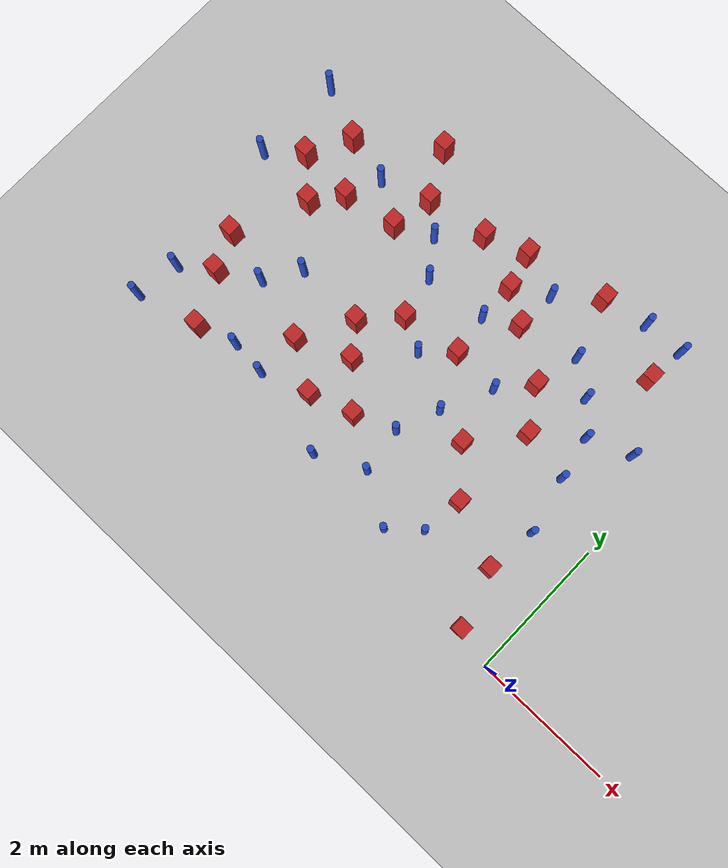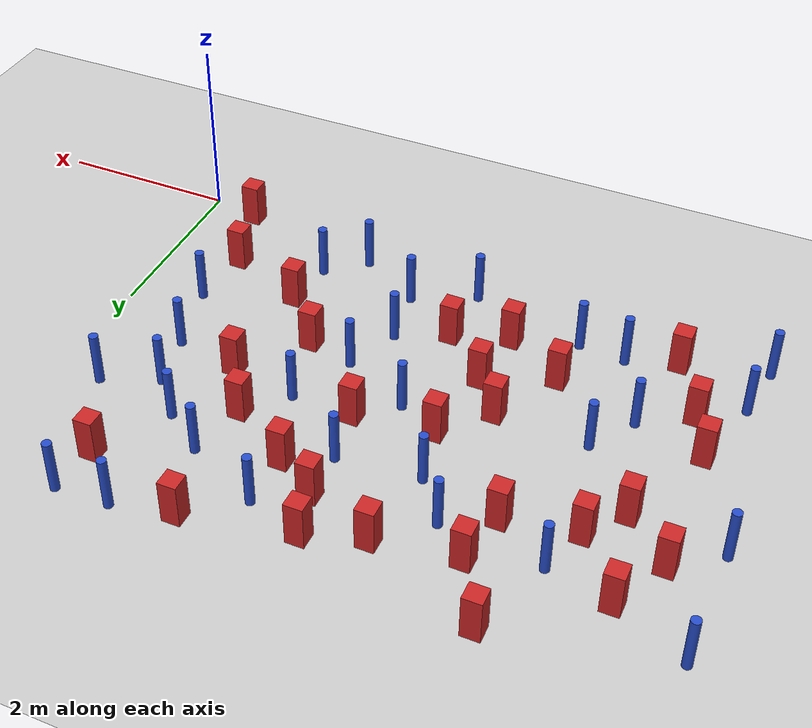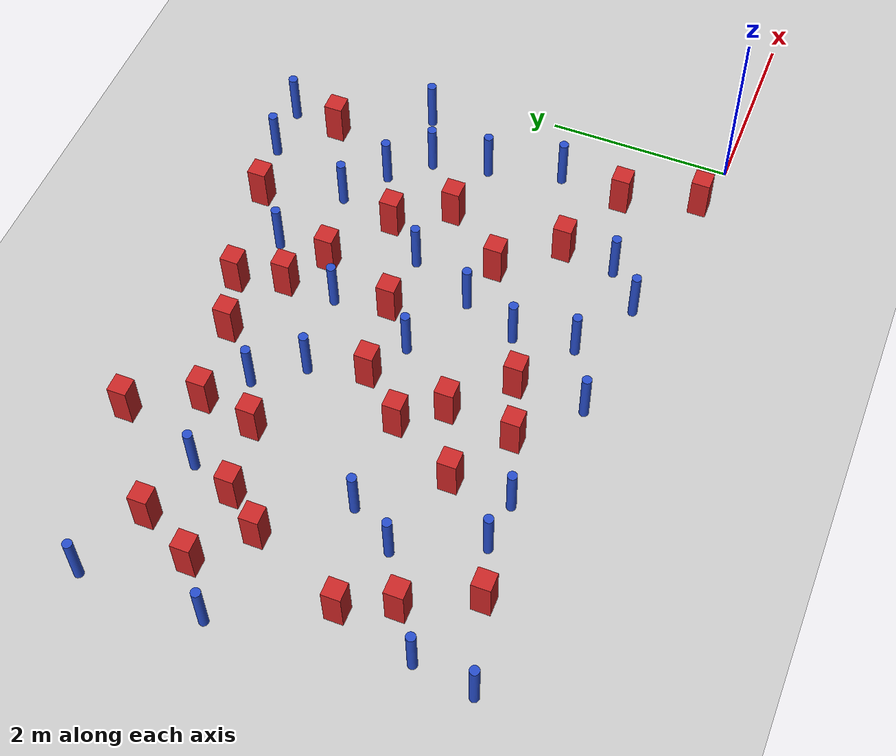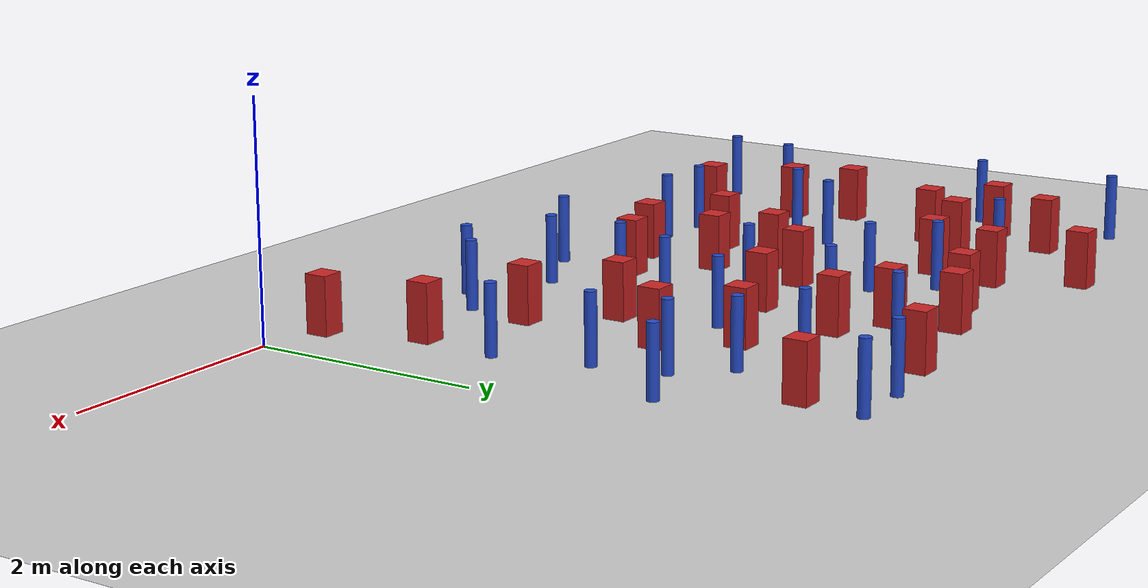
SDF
<sdf version="1.6">
 <world name="default">
  <model name="ground_plane">
   <static>1</static>
   <link name="link">
    <collision name="collision">
     <geometry><plane><normal>0 0 1</normal><size>100 100</size></plane></geometry>
     <surface><friction><ode><mu>100</mu><mu2>50</mu2></ode></friction></surface>
    </collision>
    <visual name="visual">
     <cast_shadows>0</cast_shadows>
     <geometry><plane><normal>0 0 1</normal><size>100 100</size></plane></geometry>
     <material>
      <ambient>1.0 1.0 1.0 1.0</ambient>
      <diffuse>0.8 0.8 0.8 1.0</diffuse>
      <specular>0.01 0.01 0.01 1.000000</specular>
     </material>
    </visual>
   </link>
  </model>
  <model name="square_post_obstacle3">
   <static>true</static>
   <pose>-5.67789752133 3.30921773179 -4.36207812815e-07 3.75137919937e-06 9.77721102514e-07 2.47381364184e-05</pose>
   <link name="link">
    <pose>0 0 0.25 0 -0 0</pose>
    <inertial>
     <mass>100</mass>
     <inertia>
      <ixx>0.166667</ixx>
      <ixy>0</ixy>
      <ixz>0</ixz>
      <iyy>0.166667</iyy>
      <iyz>0</iyz>
      <izz>0.166667</izz>
     </inertia>
    </inertial>
    <collision name="collision"><geometry><box><size>.2 .2 .5</size></box></geometry></collision>
    <visual name="visual">
     <geometry><box><size>.2 .2 .5</size></box></geometry>
     <material>
      <script><name>Gazebo/Red</name><uri>file://media/materials/scripts/gazebo.material</uri></script>
     </material>
    </visual>
   </link>
  </model>
  <model name="pole_obstacle7">
   <static>true</static>
   <pose>-6.65705100794 1.02592357869 -3.09024884793e-07 -7.19054271912e-07 -2.11315075124e-07 -1.9393550926e-07</pose>
   <link name="link">
    <pose>0 0 0.3 0 -0 0</pose>
    <inertial>
     <mass>1</mass>
     <inertia><ixx>0.145833</ixx><ixy>0</ixy><ixz>0</ixz><iyy>0.145833</iyy><iyz>0</iyz><izz>0.125</izz></inertia>
    </inertial>
    <collision name="collision">
     <geometry><cylinder><radius>0.05</radius><length>.6</length></cylinder></geometry>
    </collision>
    <visual name="visual">
     <geometry><cylinder><radius>0.05</radius><length>.6</length></cylinder></geometry>
     <material>
      <script><name>Gazebo/Blue</name><uri>file://media/materials/scripts/gazebo.material</uri></script>
     </material>
    </visual>
   </link>
  </model>
  <model name="pole_obstacle9">
   <static>true</static>
   <pose>-1.40873567202 3.47330076835 -3.09024884793e-07 -7.19054271912e-07 -2.11315075132e-07 -1.93935509263e-07</pose>
   <link name="link">
    <pose>0 0 0.3 0 -0 0</pose>
    <inertial>
     <mass>1</mass>
     <inertia><ixx>0.145833</ixx><ixy>0</ixy><ixz>0</ixz><iyy>0.145833</iyy><iyz>0</iyz><izz>0.125</izz></inertia>
    </inertial>
    <collision name="collision">
     <geometry><cylinder><radius>0.05</radius><length>.6</length></cylinder></geometry>
    </collision>
    <visual name="visual">
     <geometry><cylinder><radius>0.05</radius><length>.6</length></cylinder></geometry>
     <material>
      <script><name>Gazebo/Blue</name><uri>file://media/materials/scripts/gazebo.material</uri></script>
     </material>
    </visual>
   </link>
  </model>
  <model name="pole_obstacle10">
   <static>true</static>
   <pose>-2.85062982455 0.782185431165 -3.09024884793e-07 -7.19054271913e-07 -2.1131507512e-07 -1.93935509259e-07</pose>
   <link name="link">
    <pose>0 0 0.3 0 -0 0</pose>
    <inertial>
     <mass>1</mass>
     <inertia><ixx>0.145833</ixx><ixy>0</ixy><ixz>0</ixz><iyy>0.145833</iyy><iyz>0</iyz><izz>0.125</izz></inertia>
    </inertial>
    <collision name="collision">
     <geometry><cylinder><radius>0.05</radius><length>.6</length></cylinder></geometry>
    </collision>
    <visual name="visual">
     <geometry><cylinder><radius>0.05</radius><length>.6</length></cylinder></geometry>
     <material>
      <script><name>Gazebo/Blue</name><uri>file://media/materials/scripts/gazebo.material</uri></script>
     </material>
    </visual>
   </link>
  </model>
  <model name="pole_obstacle11">
   <static>true</static>
   <pose>-6.74947219534 0.385528594911 -3.09024884793e-07 -7.19054271912e-07 -2.11315075138e-07 -1.93935509266e-07</pose>
   <link name="link">
    <pose>0 0 0.3 0 -0 0</pose>
    <inertial>
     <mass>1</mass>
     <inertia><ixx>0.145833</ixx><ixy>0</ixy><ixz>0</ixz><iyy>0.145833</iyy><iyz>0</iyz><izz>0.125</izz></inertia>
    </inertial>
    <collision name="collision">
     <geometry><cylinder><radius>0.05</radius><length>.6</length></cylinder></geometry>
    </collision>
    <visual name="visual">
     <geometry><cylinder><radius>0.05</radius><length>.6</length></cylinder></geometry>
     <material>
      <script><name>Gazebo/Blue</name><uri>file://media/materials/scripts/gazebo.material</uri></script>
     </material>
    </visual>
   </link>
  </model>
  <model name="square_post_obstacle8">
   <static>true</static>
   <pose>-5.84836770055 0.63526909699 -4.36207812815e-07 3.75137919937e-06 9.77721102514e-07 2.47381364184e-05</pose>
   <link name="link">
    <pose>0 0 0.25 0 -0 0</pose>
    <inertial>
     <mass>100</mass>
     <inertia>
      <ixx>0.166667</ixx>
      <ixy>0</ixy>
      <ixz>0</ixz>
      <iyy>0.166667</iyy>
      <iyz>0</iyz>
      <izz>0.166667</izz>
     </inertia>
    </inertial>
    <collision name="collision"><geometry><box><size>.2 .2 .5</size></box></geometry></collision>
    <visual name="visual">
     <geometry><box><size>.2 .2 .5</size></box></geometry>
     <material>
      <script><name>Gazebo/Red</name><uri>file://media/materials/scripts/gazebo.material</uri></script>
     </material>
    </visual>
   </link>
  </model>
  <model name="square_post_obstacle9">
   <static>true</static>
   <pose>-4.79678003949 4.04518257709 -4.36207812815e-07 3.75137919937e-06 9.77721102514e-07 2.47381364184e-05</pose>
   <link name="link">
    <pose>0 0 0.25 0 -0 0</pose>
    <inertial>
     <mass>100</mass>
     <inertia>
      <ixx>0.166667</ixx>
      <ixy>0</ixy>
      <ixz>0</ixz>
      <iyy>0.166667</iyy>
      <iyz>0</iyz>
      <izz>0.166667</izz>
     </inertia>
    </inertial>
    <collision name="collision"><geometry><box><size>.2 .2 .5</size></box></geometry></collision>
    <visual name="visual">
     <geometry><box><size>.2 .2 .5</size></box></geometry>
     <material>
      <script><name>Gazebo/Red</name><uri>file://media/materials/scripts/gazebo.material</uri></script>
     </material>
    </visual>
   </link>
  </model>
  <model name="pole_obstacle18">
   <static>true</static>
   <pose>-3.46136850801 2.39989970297 -3.09024884793e-07 -7.19054271912e-07 -2.11315075128e-07 -1.93935509262e-07</pose>
   <link name="link">
    <pose>0 0 0.3 0 -0 0</pose>
    <inertial>
     <mass>1</mass>
     <inertia><ixx>0.145833</ixx><ixy>0</ixy><ixz>0</ixz><iyy>0.145833</iyy><iyz>0</iyz><izz>0.125</izz></inertia>
    </inertial>
    <collision name="collision">
     <geometry><cylinder><radius>0.05</radius><length>.6</length></cylinder></geometry>
    </collision>
    <visual name="visual">
     <geometry><cylinder><radius>0.05</radius><length>.6</length></cylinder></geometry>
     <material>
      <script><name>Gazebo/Blue</name><uri>file://media/materials/scripts/gazebo.material</uri></script>
     </material>
    </visual>
   </link>
  </model>
  <model name="square_post_obstacle19">
   <static>true</static>
   <pose>-6.42999469237 1.86896382606 -4.36207812815e-07 3.75137919937e-06 9.77721102514e-07 2.47381364184e-05</pose>
   <link name="link">
    <pose>0 0 0.25 0 -0 0</pose>
    <inertial>
     <mass>100</mass>
     <inertia>
      <ixx>0.166667</ixx>
      <ixy>0</ixy>
      <ixz>0</ixz>
      <iyy>0.166667</iyy>
      <iyz>0</iyz>
      <izz>0.166667</izz>
     </inertia>
    </inertial>
    <collision name="collision"><geometry><box><size>.2 .2 .5</size></box></geometry></collision>
    <visual name="visual">
     <geometry><box><size>.2 .2 .5</size></box></geometry>
     <material>
      <script><name>Gazebo/Red</name><uri>file://media/materials/scripts/gazebo.material</uri></script>
     </material>
    </visual>
   </link>
  </model>
  <model name="pole_obstacle34">
   <static>true</static>
   <pose>-1.49500617695 4.77798047862 -3.09024884793e-07 -7.19054271912e-07 -2.11315075134e-07 -1.93935509265e-07</pose>
   <link name="link">
    <pose>0 0 0.3 0 -0 0</pose>
    <inertial>
     <mass>1</mass>
     <inertia><ixx>0.145833</ixx><ixy>0</ixy><ixz>0</ixz><iyy>0.145833</iyy><iyz>0</iyz><izz>0.125</izz></inertia>
    </inertial>
    <collision name="collision">
     <geometry><cylinder><radius>0.05</radius><length>.6</length></cylinder></geometry>
    </collision>
    <visual name="visual">
     <geometry><cylinder><radius>0.05</radius><length>.6</length></cylinder></geometry>
     <material>
      <script><name>Gazebo/Blue</name><uri>file://media/materials/scripts/gazebo.material</uri></script>
     </material>
    </visual>
   </link>
  </model>
  <model name="pole_obstacle40">
   <static>true</static>
   <pose>-2.70672759789 2.0272914813 -3.09024884793e-07 -7.19054271912e-07 -2.11315075129e-07 -1.93935509262e-07</pose>
   <link name="link">
    <pose>0 0 0.3 0 -0 0</pose>
    <inertial>
     <mass>1</mass>
     <inertia><ixx>0.145833</ixx><ixy>0</ixy><ixz>0</ixz><iyy>0.145833</iyy><iyz>0</iyz><izz>0.125</izz></inertia>
    </inertial>
    <collision name="collision">
     <geometry><cylinder><radius>0.05</radius><length>.6</length></cylinder></geometry>
    </collision>
    <visual name="visual">
     <geometry><cylinder><radius>0.05</radius><length>.6</length></cylinder></geometry>
     <material>
      <script><name>Gazebo/Blue</name><uri>file://media/materials/scripts/gazebo.material</uri></script>
     </material>
    </visual>
   </link>
  </model>
  <model name="square_post_obstacle32">
   <static>true</static>
   <pose>-0.823305516276 0.957630921853 -4.36207812815e-07 3.75137919937e-06 9.77721102514e-07 2.47381364184e-05</pose>
   <link name="link">
    <pose>0 0 0.25 0 -0 0</pose>
    <inertial>
     <mass>100</mass>
     <inertia>
      <ixx>0.166667</ixx>
      <ixy>0</ixy>
      <ixz>0</ixz>
      <iyy>0.166667</iyy>
      <iyz>0</iyz>
      <izz>0.166667</izz>
     </inertia>
    </inertial>
    <collision name="collision"><geometry><box><size>.2 .2 .5</size></box></geometry></collision>
    <visual name="visual">
     <geometry><box><size>.2 .2 .5</size></box></geometry>
     <material>
      <script><name>Gazebo/Red</name><uri>file://media/materials/scripts/gazebo.material</uri></script>
     </material>
    </visual>
   </link>
  </model>
  <model name="pole_obstacle44">
   <static>true</static>
   <pose>-0.731829534871 1.6687334317 -3.09024884793e-07 -7.19054271912e-07 -2.11315075135e-07 -1.93935509266e-07</pose>
   <link name="link">
    <pose>0 0 0.3 0 -0 0</pose>
    <inertial>
     <mass>1</mass>
     <inertia><ixx>0.145833</ixx><ixy>0</ixy><ixz>0</ixz><iyy>0.145833</iyy><iyz>0</iyz><izz>0.125</izz></inertia>
    </inertial>
    <collision name="collision">
     <geometry><cylinder><radius>0.05</radius><length>.6</length></cylinder></geometry>
    </collision>
    <visual name="visual">
     <geometry><cylinder><radius>0.05</radius><length>.6</length></cylinder></geometry>
     <material>
      <script><name>Gazebo/Blue</name><uri>file://media/materials/scripts/gazebo.material</uri></script>
     </material>
    </visual>
   </link>
  </model>
  <model name="square_post_obstacle41">
   <static>true</static>
   <pose>-3.91877245333 4.18923467864 -4.36207812815e-07 3.75137919937e-06 9.77721102514e-07 2.47381364184e-05</pose>
   <link name="link">
    <pose>0 0 0.25 0 -0 0</pose>
    <inertial>
     <mass>100</mass>
     <inertia>
      <ixx>0.166667</ixx>
      <ixy>0</ixy>
      <ixz>0</ixz>
      <iyy>0.166667</iyy>
      <iyz>0</iyz>
      <izz>0.166667</izz>
     </inertia>
    </inertial>
    <collision name="collision"><geometry><box><size>.2 .2 .5</size></box></geometry></collision>
    <visual name="visual">
     <geometry><box><size>.2 .2 .5</size></box></geometry>
     <material>
      <script><name>Gazebo/Red</name><uri>file://media/materials/scripts/gazebo.material</uri></script>
     </material>
    </visual>
   </link>
  </model>
  <model name="square_post_obstacle54">
   <static>true</static>
   <pose>-0.564014151957 0.142797070524 -4.36207812815e-07 3.75137919937e-06 9.77721102514e-07 2.47381364184e-05</pose>
   <link name="link">
    <pose>0 0 0.25 0 -0 0</pose>
    <inertial>
     <mass>100</mass>
     <inertia>
      <ixx>0.166667</ixx>
      <ixy>0</ixy>
      <ixz>0</ixz>
      <iyy>0.166667</iyy>
      <iyz>0</iyz>
      <izz>0.166667</izz>
     </inertia>
    </inertial>
    <collision name="collision"><geometry><box><size>.2 .2 .5</size></box></geometry></collision>
    <visual name="visual">
     <geometry><box><size>.2 .2 .5</size></box></geometry>
     <material>
      <script><name>Gazebo/Red</name><uri>file://media/materials/scripts/gazebo.material</uri></script>
     </material>
    </visual>
   </link>
  </model>
  <model name="square_post_obstacle72">
   <static>true</static>
   <pose>-1.64574356954 2.59433861867 -4.36207812815e-07 3.75137919937e-06 9.77721102514e-07 2.47381364184e-05</pose>
   <link name="link">
    <pose>0 0 0.25 0 -0 0</pose>
    <inertial>
     <mass>100</mass>
     <inertia>
      <ixx>0.166667</ixx>
      <ixy>0</ixy>
      <ixz>0</ixz>
      <iyy>0.166667</iyy>
      <iyz>0</iyz>
      <izz>0.166667</izz>
     </inertia>
    </inertial>
    <collision name="collision"><geometry><box><size>.2 .2 .5</size></box></geometry></collision>
    <visual name="visual">
     <geometry><box><size>.2 .2 .5</size></box></geometry>
     <material>
      <script><name>Gazebo/Red</name><uri>file://media/materials/scripts/gazebo.material</uri></script>
     </material>
    </visual>
   </link>
  </model>
  <model name="pole_obstacle87">
   <static>true</static>
   <pose>-4.05686633169 3.25000160108 -3.09024884793e-07 -7.19054271912e-07 -2.11315075144e-07 -1.93935509269e-07</pose>
   <link name="link">
    <pose>0 0 0.3 0 -0 0</pose>
    <inertial>
     <mass>1</mass>
     <inertia><ixx>0.145833</ixx><ixy>0</ixy><ixz>0</ixz><iyy>0.145833</iyy><iyz>0</iyz><izz>0.125</izz></inertia>
    </inertial>
    <collision name="collision">
     <geometry><cylinder><radius>0.05</radius><length>.6</length></cylinder></geometry>
    </collision>
    <visual name="visual">
     <geometry><cylinder><radius>0.05</radius><length>.6</length></cylinder></geometry>
     <material>
      <script><name>Gazebo/Blue</name><uri>file://media/materials/scripts/gazebo.material</uri></script>
     </material>
    </visual>
   </link>
  </model>
  <model name="pole_obstacle88">
   <static>true</static>
   <pose>-0.455179903038 3.32063741083 -3.09024884793e-07 -7.19054271912e-07 -2.11315075121e-07 -1.93935509258e-07</pose>
   <link name="link">
    <pose>0 0 0.3 0 -0 0</pose>
    <inertial>
     <mass>1</mass>
     <inertia><ixx>0.145833</ixx><ixy>0</ixy><ixz>0</ixz><iyy>0.145833</iyy><iyz>0</iyz><izz>0.125</izz></inertia>
    </inertial>
    <collision name="collision">
     <geometry><cylinder><radius>0.05</radius><length>.6</length></cylinder></geometry>
    </collision>
    <visual name="visual">
     <geometry><cylinder><radius>0.05</radius><length>.6</length></cylinder></geometry>
     <material>
      <script><name>Gazebo/Blue</name><uri>file://media/materials/scripts/gazebo.material</uri></script>
     </material>
    </visual>
   </link>
  </model>
  <model name="pole_obstacle91">
   <static>true</static>
   <pose>-1.86633788947 3.80475492991 -3.09024884793e-07 -7.19054271912e-07 -2.11315075132e-07 -1.93935509263e-07</pose>
   <link name="link">
    <pose>0 0 0.3 0 -0 0</pose>
    <inertial>
     <mass>1</mass>
     <inertia><ixx>0.145833</ixx><ixy>0</ixy><ixz>0</ixz><iyy>0.145833</iyy><iyz>0</iyz><izz>0.125</izz></inertia>
    </inertial>
    <collision name="collision">
     <geometry><cylinder><radius>0.05</radius><length>.6</length></cylinder></geometry>
    </collision>
    <visual name="visual">
     <geometry><cylinder><radius>0.05</radius><length>.6</length></cylinder></geometry>
     <material>
      <script><name>Gazebo/Blue</name><uri>file://media/materials/scripts/gazebo.material</uri></script>
     </material>
    </visual>
   </link>
  </model>
  <model name="pole_obstacle99">
   <static>true</static>
   <pose>-5.30483651223 0.802079587581 -3.09024884793e-07 -7.19054271912e-07 -2.11315075134e-07 -1.93935509265e-07</pose>
   <link name="link">
    <pose>0 0 0.3 0 -0 0</pose>
    <inertial>
     <mass>1</mass>
     <inertia><ixx>0.145833</ixx><ixy>0</ixy><ixz>0</ixz><iyy>0.145833</iyy><iyz>0</iyz><izz>0.125</izz></inertia>
    </inertial>
    <collision name="collision">
     <geometry><cylinder><radius>0.05</radius><length>.6</length></cylinder></geometry>
    </collision>
    <visual name="visual">
     <geometry><cylinder><radius>0.05</radius><length>.6</length></cylinder></geometry>
     <material>
      <script><name>Gazebo/Blue</name><uri>file://media/materials/scripts/gazebo.material</uri></script>
     </material>
    </visual>
   </link>
  </model>
  <model name="pole_obstacle104">
   <static>true</static>
   <pose>-0.910860868947 4.80189493234 -3.09024884793e-07 -7.19054271912e-07 -2.11315075129e-07 -1.93935509261e-07</pose>
   <link name="link">
    <pose>0 0 0.3 0 -0 0</pose>
    <inertial>
     <mass>1</mass>
     <inertia><ixx>0.145833</ixx><ixy>0</ixy><ixz>0</ixz><iyy>0.145833</iyy><iyz>0</iyz><izz>0.125</izz></inertia>
    </inertial>
    <collision name="collision">
     <geometry><cylinder><radius>0.05</radius><length>.6</length></cylinder></geometry>
    </collision>
    <visual name="visual">
     <geometry><cylinder><radius>0.05</radius><length>.6</length></cylinder></geometry>
     <material>
      <script><name>Gazebo/Blue</name><uri>file://media/materials/scripts/gazebo.material</uri></script>
     </material>
    </visual>
   </link>
  </model>
  <model name="square_post_obstacle102">
   <static>true</static>
   <pose>-3.16990292034 3.88799753297 -4.36207812815e-07 3.75137919937e-06 9.77721102514e-07 2.47381364184e-05</pose>
   <link name="link">
    <pose>0 0 0.25 0 -0 0</pose>
    <inertial>
     <mass>100</mass>
     <inertia>
      <ixx>0.166667</ixx>
      <ixy>0</ixy>
      <ixz>0</ixz>
      <iyy>0.166667</iyy>
      <iyz>0</iyz>
      <izz>0.166667</izz>
     </inertia>
    </inertial>
    <collision name="collision"><geometry><box><size>.2 .2 .5</size></box></geometry></collision>
    <visual name="visual">
     <geometry><box><size>.2 .2 .5</size></box></geometry>
     <material>
      <script><name>Gazebo/Red</name><uri>file://media/materials/scripts/gazebo.material</uri></script>
     </material>
    </visual>
   </link>
  </model>
  <model name="square_post_obstacle110">
   <static>true</static>
   <pose>-2.1454850584 4.64033879654 -4.36207812815e-07 3.75137919937e-06 9.77721102514e-07 2.47381364184e-05</pose>
   <link name="link">
    <pose>0 0 0.25 0 -0 0</pose>
    <inertial>
     <mass>100</mass>
     <inertia>
      <ixx>0.166667</ixx>
      <ixy>0</ixy>
      <ixz>0</ixz>
      <iyy>0.166667</iyy>
      <iyz>0</iyz>
      <izz>0.166667</izz>
     </inertia>
    </inertial>
    <collision name="collision"><geometry><box><size>.2 .2 .5</size></box></geometry></collision>
    <visual name="visual">
     <geometry><box><size>.2 .2 .5</size></box></geometry>
     <material>
      <script><name>Gazebo/Red</name><uri>file://media/materials/scripts/gazebo.material</uri></script>
     </material>
    </visual>
   </link>
  </model>
  <model name="pole_obstacle115">
   <static>true</static>
   <pose>-1.75852491776 0.729243066942 -3.09024884793e-07 -7.19054271912e-07 -2.1131507513e-07 -1.93935509263e-07</pose>
   <link name="link">
    <pose>0 0 0.3 0 -0 0</pose>
    <inertial>
     <mass>1</mass>
     <inertia><ixx>0.145833</ixx><ixy>0</ixy><ixz>0</ixz><iyy>0.145833</iyy><iyz>0</iyz><izz>0.125</izz></inertia>
    </inertial>
    <collision name="collision">
     <geometry><cylinder><radius>0.05</radius><length>.6</length></cylinder></geometry>
    </collision>
    <visual name="visual">
     <geometry><cylinder><radius>0.05</radius><length>.6</length></cylinder></geometry>
     <material>
      <script><name>Gazebo/Blue</name><uri>file://media/materials/scripts/gazebo.material</uri></script>
     </material>
    </visual>
   </link>
  </model>
  <model name="pole_obstacle117">
   <static>true</static>
   <pose>-2.16438747054 0.380082741062 -3.09024884793e-07 -7.19054271912e-07 -2.1131507512e-07 -1.93935509259e-07</pose>
   <link name="link">
    <pose>0 0 0.3 0 -0 0</pose>
    <inertial>
     <mass>1</mass>
     <inertia><ixx>0.145833</ixx><ixy>0</ixy><ixz>0</ixz><iyy>0.145833</iyy><iyz>0</iyz><izz>0.125</izz></inertia>
    </inertial>
    <collision name="collision">
     <geometry><cylinder><radius>0.05</radius><length>.6</length></cylinder></geometry>
    </collision>
    <visual name="visual">
     <geometry><cylinder><radius>0.05</radius><length>.6</length></cylinder></geometry>
     <material>
      <script><name>Gazebo/Blue</name><uri>file://media/materials/scripts/gazebo.material</uri></script>
     </material>
    </visual>
   </link>
  </model>
  <model name="square_post_obstacle116">
   <static>true</static>
   <pose>-6.20798982585 1.3473744895 -4.36207812815e-07 3.75137919937e-06 9.77721102514e-07 2.47381364184e-05</pose>
   <link name="link">
    <pose>0 0 0.25 0 -0 0</pose>
    <inertial>
     <mass>100</mass>
     <inertia>
      <ixx>0.166667</ixx>
      <ixy>0</ixy>
      <ixz>0</ixz>
      <iyy>0.166667</iyy>
      <iyz>0</iyz>
      <izz>0.166667</izz>
     </inertia>
    </inertial>
    <collision name="collision"><geometry><box><size>.2 .2 .5</size></box></geometry></collision>
    <visual name="visual">
     <geometry><box><size>.2 .2 .5</size></box></geometry>
     <material>
      <script><name>Gazebo/Red</name><uri>file://media/materials/scripts/gazebo.material</uri></script>
     </material>
    </visual>
   </link>
  </model>
  <model name="square_post_obstacle117">
   <static>true</static>
   <pose>-4.35882569392 2.14141068132 -4.36207812815e-07 3.75137919937e-06 9.77721102514e-07 2.47381364184e-05</pose>
   <link name="link">
    <pose>0 0 0.25 0 -0 0</pose>
    <inertial>
     <mass>100</mass>
     <inertia>
      <ixx>0.166667</ixx>
      <ixy>0</ixy>
      <ixz>0</ixz>
      <iyy>0.166667</iyy>
      <iyz>0</iyz>
      <izz>0.166667</izz>
     </inertia>
    </inertial>
    <collision name="collision"><geometry><box><size>.2 .2 .5</size></box></geometry></collision>
    <visual name="visual">
     <geometry><box><size>.2 .2 .5</size></box></geometry>
     <material>
      <script><name>Gazebo/Red</name><uri>file://media/materials/scripts/gazebo.material</uri></script>
     </material>
    </visual>
   </link>
  </model>
  <model name="pole_obstacle118">
   <static>true</static>
   <pose>-2.68927601807 4.18999413924 -3.09024884793e-07 -7.19054271912e-07 -2.11315075134e-07 -1.93935509266e-07</pose>
   <link name="link">
    <pose>0 0 0.3 0 -0 0</pose>
    <inertial>
     <mass>1</mass>
     <inertia><ixx>0.145833</ixx><ixy>0</ixy><ixz>0</ixz><iyy>0.145833</iyy><iyz>0</iyz><izz>0.125</izz></inertia>
    </inertial>
    <collision name="collision">
     <geometry><cylinder><radius>0.05</radius><length>.6</length></cylinder></geometry>
    </collision>
    <visual name="visual">
     <geometry><cylinder><radius>0.05</radius><length>.6</length></cylinder></geometry>
     <material>
      <script><name>Gazebo/Blue</name><uri>file://media/materials/scripts/gazebo.material</uri></script>
     </material>
    </visual>
   </link>
  </model>
  <model name="square_post_obstacle120">
   <static>true</static>
   <pose>-2.19561697077 1.90599313911 -4.36207812815e-07 3.75137919937e-06 9.77721102514e-07 2.47381364184e-05</pose>
   <link name="link">
    <pose>0 0 0.25 0 -0 0</pose>
    <inertial>
     <mass>100</mass>
     <inertia>
      <ixx>0.166667</ixx>
      <ixy>0</ixy>
      <ixz>0</ixz>
      <iyy>0.166667</iyy>
      <iyz>0</iyz>
      <izz>0.166667</izz>
     </inertia>
    </inertial>
    <collision name="collision"><geometry><box><size>.2 .2 .5</size></box></geometry></collision>
    <visual name="visual">
     <geometry><box><size>.2 .2 .5</size></box></geometry>
     <material>
      <script><name>Gazebo/Red</name><uri>file://media/materials/scripts/gazebo.material</uri></script>
     </material>
    </visual>
   </link>
  </model>
  <model name="pole_obstacle122">
   <static>true</static>
   <pose>-2.38721303995 2.72938186522 -3.09024884793e-07 -7.19054271912e-07 -2.11315075144e-07 -1.93935509271e-07</pose>
   <link name="link">
    <pose>0 0 0.3 0 -0 0</pose>
    <inertial>
     <mass>1</mass>
     <inertia><ixx>0.145833</ixx><ixy>0</ixy><ixz>0</ixz><iyy>0.145833</iyy><iyz>0</iyz><izz>0.125</izz></inertia>
    </inertial>
    <collision name="collision">
     <geometry><cylinder><radius>0.05</radius><length>.6</length></cylinder></geometry>
    </collision>
    <visual name="visual">
     <geometry><cylinder><radius>0.05</radius><length>.6</length></cylinder></geometry>
     <material>
      <script><name>Gazebo/Blue</name><uri>file://media/materials/scripts/gazebo.material</uri></script>
     </material>
    </visual>
   </link>
  </model>
  <model name="pole_obstacle125">
   <static>true</static>
   <pose>-3.16512363859 3.3440515241 -3.09024884793e-07 -7.19054271912e-07 -2.11315075144e-07 -1.93935509271e-07</pose>
   <link name="link">
    <pose>0 0 0.3 0 -0 0</pose>
    <inertial>
     <mass>1</mass>
     <inertia><ixx>0.145833</ixx><ixy>0</ixy><ixz>0</ixz><iyy>0.145833</iyy><iyz>0</iyz><izz>0.125</izz></inertia>
    </inertial>
    <collision name="collision">
     <geometry><cylinder><radius>0.05</radius><length>.6</length></cylinder></geometry>
    </collision>
    <visual name="visual">
     <geometry><cylinder><radius>0.05</radius><length>.6</length></cylinder></geometry>
     <material>
      <script><name>Gazebo/Blue</name><uri>file://media/materials/scripts/gazebo.material</uri></script>
     </material>
    </visual>
   </link>
  </model>
  <model name="pole_obstacle126">
   <static>true</static>
   <pose>-2.94426319904 1.43153831148 -3.09024884793e-07 -7.19054271912e-07 -2.11315075122e-07 -1.93935509259e-07</pose>
   <link name="link">
    <pose>0 0 0.3 0 -0 0</pose>
    <inertial>
     <mass>1</mass>
     <inertia><ixx>0.145833</ixx><ixy>0</ixy><ixz>0</ixz><iyy>0.145833</iyy><iyz>0</iyz><izz>0.125</izz></inertia>
    </inertial>
    <collision name="collision">
     <geometry><cylinder><radius>0.05</radius><length>.6</length></cylinder></geometry>
    </collision>
    <visual name="visual">
     <geometry><cylinder><radius>0.05</radius><length>.6</length></cylinder></geometry>
     <material>
      <script><name>Gazebo/Blue</name><uri>file://media/materials/scripts/gazebo.material</uri></script>
     </material>
    </visual>
   </link>
  </model>
  <model name="pole_obstacle127">
   <static>true</static>
   <pose>-1.05442199148 3.07599865613 -3.09024884793e-07 -7.19054271912e-07 -2.11315075132e-07 -1.93935509263e-07</pose>
   <link name="link">
    <pose>0 0 0.3 0 -0 0</pose>
    <inertial>
     <mass>1</mass>
     <inertia><ixx>0.145833</ixx><ixy>0</ixy><ixz>0</ixz><iyy>0.145833</iyy><iyz>0</iyz><izz>0.125</izz></inertia>
    </inertial>
    <collision name="collision">
     <geometry><cylinder><radius>0.05</radius><length>.6</length></cylinder></geometry>
    </collision>
    <visual name="visual">
     <geometry><cylinder><radius>0.05</radius><length>.6</length></cylinder></geometry>
     <material>
      <script><name>Gazebo/Blue</name><uri>file://media/materials/scripts/gazebo.material</uri></script>
     </material>
    </visual>
   </link>
  </model>
  <model name="square_post_obstacle134">
   <static>true</static>
   <pose>-5.16798316609 4.72014795675 -4.36207812815e-07 3.75137919937e-06 9.77721102514e-07 2.47381364184e-05</pose>
   <link name="link">
    <pose>0 0 0.25 0 -0 0</pose>
    <inertial>
     <mass>100</mass>
     <inertia>
      <ixx>0.166667</ixx>
      <ixy>0</ixy>
      <ixz>0</ixz>
      <iyy>0.166667</iyy>
      <iyz>0</iyz>
      <izz>0.166667</izz>
     </inertia>
    </inertial>
    <collision name="collision"><geometry><box><size>.2 .2 .5</size></box></geometry></collision>
    <visual name="visual">
     <geometry><box><size>.2 .2 .5</size></box></geometry>
     <material>
      <script><name>Gazebo/Red</name><uri>file://media/materials/scripts/gazebo.material</uri></script>
     </material>
    </visual>
   </link>
  </model>
  <model name="pole_obstacle146">
   <static>true</static>
   <pose>-5.68056314509 1.6664025049 -3.09024884793e-07 -7.19054271912e-07 -2.11315075124e-07 -1.93935509261e-07</pose>
   <link name="link">
    <pose>0 0 0.3 0 -0 0</pose>
    <inertial>
     <mass>1</mass>
     <inertia><ixx>0.145833</ixx><ixy>0</ixy><ixz>0</ixz><iyy>0.145833</iyy><iyz>0</iyz><izz>0.125</izz></inertia>
    </inertial>
    <collision name="collision">
     <geometry><cylinder><radius>0.05</radius><length>.6</length></cylinder></geometry>
    </collision>
    <visual name="visual">
     <geometry><cylinder><radius>0.05</radius><length>.6</length></cylinder></geometry>
     <material>
      <script><name>Gazebo/Blue</name><uri>file://media/materials/scripts/gazebo.material</uri></script>
     </material>
    </visual>
   </link>
  </model>
  <model name="square_post_obstacle141">
   <static>true</static>
   <pose>-4.11424553122 0.994681371145 -4.36207812815e-07 3.75137919937e-06 9.77721102514e-07 2.47381364184e-05</pose>
   <link name="link">
    <pose>0 0 0.25 0 -0 0</pose>
    <inertial>
     <mass>100</mass>
     <inertia>
      <ixx>0.166667</ixx>
      <ixy>0</ixy>
      <ixz>0</ixz>
      <iyy>0.166667</iyy>
      <iyz>0</iyz>
      <izz>0.166667</izz>
     </inertia>
    </inertial>
    <collision name="collision"><geometry><box><size>.2 .2 .5</size></box></geometry></collision>
    <visual name="visual">
     <geometry><box><size>.2 .2 .5</size></box></geometry>
     <material>
      <script><name>Gazebo/Red</name><uri>file://media/materials/scripts/gazebo.material</uri></script>
     </material>
    </visual>
   </link>
  </model>
  <model name="square_post_obstacle147">
   <static>true</static>
   <pose>-3.07040960812 2.75049902297 -4.36207812815e-07 3.75137919937e-06 9.77721102514e-07 2.47381364184e-05</pose>
   <link name="link">
    <pose>0 0 0.25 0 -0 0</pose>
    <inertial>
     <mass>100</mass>
     <inertia>
      <ixx>0.166667</ixx>
      <ixy>0</ixy>
      <ixz>0</ixz>
      <iyy>0.166667</iyy>
      <iyz>0</iyz>
      <izz>0.166667</izz>
     </inertia>
    </inertial>
    <collision name="collision"><geometry><box><size>.2 .2 .5</size></box></geometry></collision>
    <visual name="visual">
     <geometry><box><size>.2 .2 .5</size></box></geometry>
     <material>
      <script><name>Gazebo/Red</name><uri>file://media/materials/scripts/gazebo.material</uri></script>
     </material>
    </visual>
   </link>
  </model>
  <model name="square_post_obstacle151">
   <static>true</static>
   <pose>-3.91859656128 2.62939159996 -4.36207812815e-07 3.75137919937e-06 9.77721102514e-07 2.47381364184e-05</pose>
   <link name="link">
    <pose>0 0 0.25 0 -0 0</pose>
    <inertial>
     <mass>100</mass>
     <inertia>
      <ixx>0.166667</ixx>
      <ixy>0</ixy>
      <ixz>0</ixz>
      <iyy>0.166667</iyy>
      <iyz>0</iyz>
      <izz>0.166667</izz>
     </inertia>
    </inertial>
    <collision name="collision"><geometry><box><size>.2 .2 .5</size></box></geometry></collision>
    <visual name="visual">
     <geometry><box><size>.2 .2 .5</size></box></geometry>
     <material>
      <script><name>Gazebo/Red</name><uri>file://media/materials/scripts/gazebo.material</uri></script>
     </material>
    </visual>
   </link>
  </model>
  <model name="square_post_obstacle153">
   <static>true</static>
   <pose>-6.48331677346 3.36507040499 -4.36207812815e-07 3.75137919937e-06 9.77721102514e-07 2.47381364184e-05</pose>
   <link name="link">
    <pose>0 0 0.25 0 -0 0</pose>
    <inertial>
     <mass>100</mass>
     <inertia>
      <ixx>0.166667</ixx>
      <ixy>0</ixy>
      <ixz>0</ixz>
      <iyy>0.166667</iyy>
      <iyz>0</iyz>
      <izz>0.166667</izz>
     </inertia>
    </inertial>
    <collision name="collision"><geometry><box><size>.2 .2 .5</size></box></geometry></collision>
    <visual name="visual">
     <geometry><box><size>.2 .2 .5</size></box></geometry>
     <material>
      <script><name>Gazebo/Red</name><uri>file://media/materials/scripts/gazebo.material</uri></script>
     </material>
    </visual>
   </link>
  </model>
  <model name="pole_obstacle163">
   <static>true</static>
   <pose>-0.927601710832 2.46546752015 -3.09024884793e-07 -7.19054271912e-07 -2.11315075129e-07 -1.93935509263e-07</pose>
   <link name="link">
    <pose>0 0 0.3 0 -0 0</pose>
    <inertial>
     <mass>1</mass>
     <inertia><ixx>0.145833</ixx><ixy>0</ixy><ixz>0</ixz><iyy>0.145833</iyy><iyz>0</iyz><izz>0.125</izz></inertia>
    </inertial>
    <collision name="collision">
     <geometry><cylinder><radius>0.05</radius><length>.6</length></cylinder></geometry>
    </collision>
    <visual name="visual">
     <geometry><cylinder><radius>0.05</radius><length>.6</length></cylinder></geometry>
     <material>
      <script><name>Gazebo/Blue</name><uri>file://media/materials/scripts/gazebo.material</uri></script>
     </material>
    </visual>
   </link>
  </model>
  <model name="square_post_obstacle154">
   <static>true</static>
   <pose>-2.01801926613 3.15687638756 -4.36207812815e-07 3.75137919937e-06 9.77721102514e-07 2.47381364184e-05</pose>
   <link name="link">
    <pose>0 0 0.25 0 -0 0</pose>
    <inertial>
     <mass>100</mass>
     <inertia>
      <ixx>0.166667</ixx>
      <ixy>0</ixy>
      <ixz>0</ixz>
      <iyy>0.166667</iyy>
      <iyz>0</iyz>
      <izz>0.166667</izz>
     </inertia>
    </inertial>
    <collision name="collision"><geometry><box><size>.2 .2 .5</size></box></geometry></collision>
    <visual name="visual">
     <geometry><box><size>.2 .2 .5</size></box></geometry>
     <material>
      <script><name>Gazebo/Red</name><uri>file://media/materials/scripts/gazebo.material</uri></script>
     </material>
    </visual>
   </link>
  </model>
  <model name="square_post_obstacle162">
   <static>true</static>
   <pose>-3.50051096924 1.19397769022 -4.36207812815e-07 3.75137919937e-06 9.77721102514e-07 2.47381364184e-05</pose>
   <link name="link">
    <pose>0 0 0.25 0 -0 0</pose>
    <inertial>
     <mass>100</mass>
     <inertia>
      <ixx>0.166667</ixx>
      <ixy>0</ixy>
      <ixz>0</ixz>
      <iyy>0.166667</iyy>
      <iyz>0</iyz>
      <izz>0.166667</izz>
     </inertia>
    </inertial>
    <collision name="collision"><geometry><box><size>.2 .2 .5</size></box></geometry></collision>
    <visual name="visual">
     <geometry><box><size>.2 .2 .5</size></box></geometry>
     <material>
      <script><name>Gazebo/Red</name><uri>file://media/materials/scripts/gazebo.material</uri></script>
     </material>
    </visual>
   </link>
  </model>
  <model name="square_post_obstacle174">
   <static>true</static>
   <pose>-6.1755302738 3.96886555926 -4.36207812815e-07 3.75137919937e-06 9.77721102514e-07 2.47381364184e-05</pose>
   <link name="link">
    <pose>0 0 0.25 0 -0 0</pose>
    <inertial>
     <mass>100</mass>
     <inertia>
      <ixx>0.166667</ixx>
      <ixy>0</ixy>
      <ixz>0</ixz>
      <iyy>0.166667</iyy>
      <iyz>0</iyz>
      <izz>0.166667</izz>
     </inertia>
    </inertial>
    <collision name="collision"><geometry><box><size>.2 .2 .5</size></box></geometry></collision>
    <visual name="visual">
     <geometry><box><size>.2 .2 .5</size></box></geometry>
     <material>
      <script><name>Gazebo/Red</name><uri>file://media/materials/scripts/gazebo.material</uri></script>
     </material>
    </visual>
   </link>
  </model>
  <model name="pole_obstacle177">
   <static>true</static>
   <pose>-6.94090199834 4.30841991156 -3.09024884793e-07 -7.19054271911e-07 -2.1131507516e-07 -1.93935509277e-07</pose>
   <link name="link">
    <pose>0 0 0.3 0 -0 0</pose>
    <inertial>
     <mass>1</mass>
     <inertia><ixx>0.145833</ixx><ixy>0</ixy><ixz>0</ixz><iyy>0.145833</iyy><iyz>0</iyz><izz>0.125</izz></inertia>
    </inertial>
    <collision name="collision">
     <geometry><cylinder><radius>0.05</radius><length>.6</length></cylinder></geometry>
    </collision>
    <visual name="visual">
     <geometry><cylinder><radius>0.05</radius><length>.6</length></cylinder></geometry>
     <material>
      <script><name>Gazebo/Blue</name><uri>file://media/materials/scripts/gazebo.material</uri></script>
     </material>
    </visual>
   </link>
  </model>
  <model name="square_post_obstacle182">
   <static>true</static>
   <pose>-4.76827417799 1.39990916855 -4.36207812815e-07 3.75137919937e-06 9.77721102514e-07 2.47381364184e-05</pose>
   <link name="link">
    <pose>0 0 0.25 0 -0 0</pose>
    <inertial>
     <mass>100</mass>
     <inertia>
      <ixx>0.166667</ixx>
      <ixy>0</ixy>
      <ixz>0</ixz>
      <iyy>0.166667</iyy>
      <iyz>0</iyz>
      <izz>0.166667</izz>
     </inertia>
    </inertial>
    <collision name="collision"><geometry><box><size>.2 .2 .5</size></box></geometry></collision>
    <visual name="visual">
     <geometry><box><size>.2 .2 .5</size></box></geometry>
     <material>
      <script><name>Gazebo/Red</name><uri>file://media/materials/scripts/gazebo.material</uri></script>
     </material>
    </visual>
   </link>
  </model>
  <model name="pole_obstacle186">
   <static>true</static>
   <pose>-3.52198807113 0.452606336214 -3.09024884793e-07 -7.19054271912e-07 -2.11315075117e-07 -1.93935509257e-07</pose>
   <link name="link">
    <pose>0 0 0.3 0 -0 0</pose>
    <inertial>
     <mass>1</mass>
     <inertia><ixx>0.145833</ixx><ixy>0</ixy><ixz>0</ixz><iyy>0.145833</iyy><iyz>0</iyz><izz>0.125</izz></inertia>
    </inertial>
    <collision name="collision">
     <geometry><cylinder><radius>0.05</radius><length>.6</length></cylinder></geometry>
    </collision>
    <visual name="visual">
     <geometry><cylinder><radius>0.05</radius><length>.6</length></cylinder></geometry>
     <material>
      <script><name>Gazebo/Blue</name><uri>file://media/materials/scripts/gazebo.material</uri></script>
     </material>
    </visual>
   </link>
  </model>
  <model name="square_post_obstacle197">
   <static>true</static>
   <pose>-3.31308847006 4.3999922415 -4.36207812815e-07 3.75137919937e-06 9.77721102514e-07 2.47381364184e-05</pose>
   <link name="link">
    <pose>0 0 0.25 0 -0 0</pose>
    <inertial>
     <mass>100</mass>
     <inertia>
      <ixx>0.166667</ixx>
      <ixy>0</ixy>
      <ixz>0</ixz>
      <iyy>0.166667</iyy>
      <iyz>0</iyz>
      <izz>0.166667</izz>
     </inertia>
    </inertial>
    <collision name="collision"><geometry><box><size>.2 .2 .5</size></box></geometry></collision>
    <visual name="visual">
     <geometry><box><size>.2 .2 .5</size></box></geometry>
     <material>
      <script><name>Gazebo/Red</name><uri>file://media/materials/scripts/gazebo.material</uri></script>
     </material>
    </visual>
   </link>
  </model>
  <model name="square_post_obstacle198">
   <static>true</static>
   <pose>-5.98915015417 2.90206064581 -4.36207812815e-07 3.75137919937e-06 9.77721102514e-07 2.47381364184e-05</pose>
   <link name="link">
    <pose>0 0 0.25 0 -0 0</pose>
    <inertial>
     <mass>100</mass>
     <inertia>
      <ixx>0.166667</ixx>
      <ixy>0</ixy>
      <ixz>0</ixz>
      <iyy>0.166667</iyy>
      <iyz>0</iyz>
      <izz>0.166667</izz>
     </inertia>
    </inertial>
    <collision name="collision"><geometry><box><size>.2 .2 .5</size></box></geometry></collision>
    <visual name="visual">
     <geometry><box><size>.2 .2 .5</size></box></geometry>
     <material>
      <script><name>Gazebo/Red</name><uri>file://media/materials/scripts/gazebo.material</uri></script>
     </material>
    </visual>
   </link>
  </model>
  <model name="pole_obstacle192">
   <static>true</static>
   <pose>-5.49262864623 3.81321833734 -3.09024884793e-07 -7.19054271912e-07 -2.11315075144e-07 -1.93935509269e-07</pose>
   <link name="link">
    <pose>0 0 0.3 0 -0 0</pose>
    <inertial>
     <mass>1</mass>
     <inertia><ixx>0.145833</ixx><ixy>0</ixy><ixz>0</ixz><iyy>0.145833</iyy><iyz>0</iyz><izz>0.125</izz></inertia>
    </inertial>
    <collision name="collision">
     <geometry><cylinder><radius>0.05</radius><length>.6</length></cylinder></geometry>
    </collision>
    <visual name="visual">
     <geometry><cylinder><radius>0.05</radius><length>.6</length></cylinder></geometry>
     <material>
      <script><name>Gazebo/Blue</name><uri>file://media/materials/scripts/gazebo.material</uri></script>
     </material>
    </visual>
   </link>
  </model>
  <model name="square_post_obstacle206">
   <static>true</static>
   <pose>-0.981223261447 4.25447420117 -4.36207812815e-07 3.75137919937e-06 9.77721102514e-07 2.47381364184e-05</pose>
   <link name="link">
    <pose>0 0 0.25 0 -0 0</pose>
    <inertial>
     <mass>100</mass>
     <inertia>
      <ixx>0.166667</ixx>
      <ixy>0</ixy>
      <ixz>0</ixz>
      <iyy>0.166667</iyy>
      <iyz>0</iyz>
      <izz>0.166667</izz>
     </inertia>
    </inertial>
    <collision name="collision"><geometry><box><size>.2 .2 .5</size></box></geometry></collision>
    <visual name="visual">
     <geometry><box><size>.2 .2 .5</size></box></geometry>
     <material>
      <script><name>Gazebo/Red</name><uri>file://media/materials/scripts/gazebo.material</uri></script>
     </material>
    </visual>
   </link>
  </model>
  <model name="pole_obstacle202">
   <static>true</static>
   <pose>-5.36320438573 2.15837364107 -3.09024884793e-07 -7.19054271912e-07 -2.11315075144e-07 -1.93935509269e-07</pose>
   <link name="link">
    <pose>0 0 0.3 0 -0 0</pose>
    <inertial>
     <mass>1</mass>
     <inertia><ixx>0.145833</ixx><ixy>0</ixy><ixz>0</ixz><iyy>0.145833</iyy><iyz>0</iyz><izz>0.125</izz></inertia>
    </inertial>
    <collision name="collision">
     <geometry><cylinder><radius>0.05</radius><length>.6</length></cylinder></geometry>
    </collision>
    <visual name="visual">
     <geometry><cylinder><radius>0.05</radius><length>.6</length></cylinder></geometry>
     <material>
      <script><name>Gazebo/Blue</name><uri>file://media/materials/scripts/gazebo.material</uri></script>
     </material>
    </visual>
   </link>
  </model>
  <model name="pole_obstacle204">
   <static>true</static>
   <pose>-6.95893415314 2.99144346895 -3.09024884793e-07 -7.19054271912e-07 -2.11315075144e-07 -1.93935509269e-07</pose>
   <link name="link">
    <pose>0 0 0.3 0 -0 0</pose>
    <inertial>
     <mass>1</mass>
     <inertia><ixx>0.145833</ixx><ixy>0</ixy><ixz>0</ixz><iyy>0.145833</iyy><iyz>0</iyz><izz>0.125</izz></inertia>
    </inertial>
    <collision name="collision">
     <geometry><cylinder><radius>0.05</radius><length>.6</length></cylinder></geometry>
    </collision>
    <visual name="visual">
     <geometry><cylinder><radius>0.05</radius><length>.6</length></cylinder></geometry>
     <material>
      <script><name>Gazebo/Blue</name><uri>file://media/materials/scripts/gazebo.material</uri></script>
     </material>
    </visual>
   </link>
  </model>
  <model name="pole_obstacle205">
   <static>true</static>
   <pose>-4.79524542706 0.757353498159 -3.09024884793e-07 -7.19054271912e-07 -2.11315075134e-07 -1.93935509265e-07</pose>
   <link name="link">
    <pose>0 0 0.3 0 -0 0</pose>
    <inertial>
     <mass>1</mass>
     <inertia><ixx>0.145833</ixx><ixy>0</ixy><ixz>0</ixz><iyy>0.145833</iyy><iyz>0</iyz><izz>0.125</izz></inertia>
    </inertial>
    <collision name="collision">
     <geometry><cylinder><radius>0.05</radius><length>.6</length></cylinder></geometry>
    </collision>
    <visual name="visual">
     <geometry><cylinder><radius>0.05</radius><length>.6</length></cylinder></geometry>
     <material>
      <script><name>Gazebo/Blue</name><uri>file://media/materials/scripts/gazebo.material</uri></script>
     </material>
    </visual>
   </link>
  </model>
  <model name="square_post_obstacle207">
   <static>true</static>
   <pose>-4.91084142283 3.45243817784 -4.36207812815e-07 3.75137919937e-06 9.77721102514e-07 2.47381364184e-05</pose>
   <link name="link">
    <pose>0 0 0.25 0 -0 0</pose>
    <inertial>
     <mass>100</mass>
     <inertia>
      <ixx>0.166667</ixx>
      <ixy>0</ixy>
      <ixz>0</ixz>
      <iyy>0.166667</iyy>
      <iyz>0</iyz>
      <izz>0.166667</izz>
     </inertia>
    </inertial>
    <collision name="collision"><geometry><box><size>.2 .2 .5</size></box></geometry></collision>
    <visual name="visual">
     <geometry><box><size>.2 .2 .5</size></box></geometry>
     <material>
      <script><name>Gazebo/Red</name><uri>file://media/materials/scripts/gazebo.material</uri></script>
     </material>
    </visual>
   </link>
  </model>
  <model name="square_post_obstacle213">
   <static>true</static>
   <pose>-4.03342173093 1.72318785905 -4.36207812815e-07 3.75137919937e-06 9.77721102514e-07 2.47381364184e-05</pose>
   <link name="link">
    <pose>0 0 0.25 0 -0 0</pose>
    <inertial>
     <mass>100</mass>
     <inertia>
      <ixx>0.166667</ixx>
      <ixy>0</ixy>
      <ixz>0</ixz>
      <iyy>0.166667</iyy>
      <iyz>0</iyz>
      <izz>0.166667</izz>
     </inertia>
    </inertial>
    <collision name="collision"><geometry><box><size>.2 .2 .5</size></box></geometry></collision>
    <visual name="visual">
     <geometry><box><size>.2 .2 .5</size></box></geometry>
     <material>
      <script><name>Gazebo/Red</name><uri>file://media/materials/scripts/gazebo.material</uri></script>
     </material>
    </visual>
   </link>
  </model>
  <model name="pole_obstacle217">
   <static>true</static>
   <pose>-4.40759788448 3.7201813788 -3.09024884793e-07 -7.19054271912e-07 -2.11315075144e-07 -1.93935509269e-07</pose>
   <link name="link">
    <pose>0 0 0.3 0 -0 0</pose>
    <inertial>
     <mass>1</mass>
     <inertia><ixx>0.145833</ixx><ixy>0</ixy><ixz>0</ixz><iyy>0.145833</iyy><iyz>0</iyz><izz>0.125</izz></inertia>
    </inertial>
    <collision name="collision">
     <geometry><cylinder><radius>0.05</radius><length>.6</length></cylinder></geometry>
    </collision>
    <visual name="visual">
     <geometry><cylinder><radius>0.05</radius><length>.6</length></cylinder></geometry>
     <material>
      <script><name>Gazebo/Blue</name><uri>file://media/materials/scripts/gazebo.material</uri></script>
     </material>
    </visual>
   </link>
  </model>
  <model name="square_post_obstacle219">
   <static>true</static>
   <pose>-2.7174699448 3.60351997467 -4.36207812815e-07 3.75137919937e-06 9.77721102514e-07 2.47381364184e-05</pose>
   <link name="link">
    <pose>0 0 0.25 0 -0 0</pose>
    <inertial>
     <mass>100</mass>
     <inertia>
      <ixx>0.166667</ixx>
      <ixy>0</ixy>
      <ixz>0</ixz>
      <iyy>0.166667</iyy>
      <iyz>0</iyz>
      <izz>0.166667</izz>
     </inertia>
    </inertial>
    <collision name="collision"><geometry><box><size>.2 .2 .5</size></box></geometry></collision>
    <visual name="visual">
     <geometry><box><size>.2 .2 .5</size></box></geometry>
     <material>
      <script><name>Gazebo/Red</name><uri>file://media/materials/scripts/gazebo.material</uri></script>
     </material>
    </visual>
   </link>
  </model>
  <model name="square_post_obstacle229">
   <static>true</static>
   <pose>-1.6892599448 1.31509997467 -4.36207812815e-07 3.75137919937e-06 9.77721102514e-07 2.47381364184e-05</pose>
   <link name="link">
    <pose>0 0 0.25 0 -0 0</pose>
    <inertial>
     <mass>100</mass>
     <inertia>
      <ixx>0.166667</ixx>
      <ixy>0</ixy>
      <ixz>0</ixz>
      <iyy>0.166667</iyy>
      <iyz>0</iyz>
      <izz>0.166667</izz>
     </inertia>
    </inertial>
    <collision name="collision"><geometry><box><size>.2 .2 .5</size></box></geometry></collision>
    <visual name="visual">
     <geometry><box><size>.2 .2 .5</size></box></geometry>
     <material>
      <script><name>Gazebo/Red</name><uri>file://media/materials/scripts/gazebo.material</uri></script>
     </material>
    </visual>
   </link>
  </model>
 </world>
</sdf>
